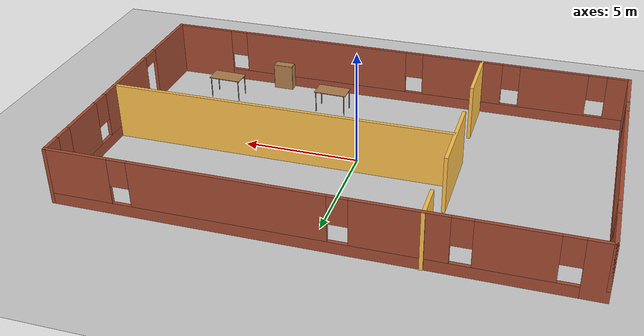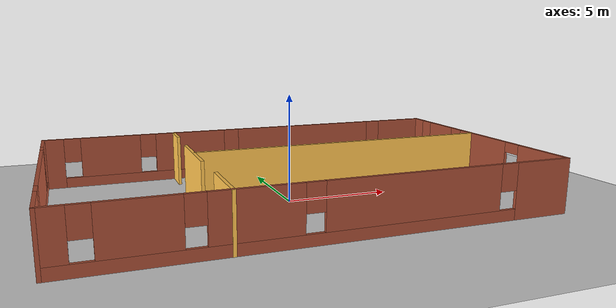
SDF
<sdf version="1.6">
 <world name="default">
  <model name="ground_plane">
   <static>1</static>
   <link name="link">
    <collision name="collision">
     <geometry><plane><normal>0 0 1</normal><size>100 100</size></plane></geometry>
     <surface><friction><ode><mu>100</mu><mu2>50</mu2></ode></friction></surface>
    </collision>
    <visual name="visual">
     <cast_shadows>0</cast_shadows>
     <geometry><plane><normal>0 0 1</normal><size>100 100</size></plane></geometry>
     <material>
      <script><uri>file://media/materials/scripts/gazebo.material</uri><name>Gazebo/Grey</name></script>
     </material>
    </visual>
   </link>
  </model>
  <model name="Building1">
   <pose>-0.03379 0.24138 0 0 -0 0</pose>
   <link name="Wall_0">
    <pose>-0.000989 6.04157 0 0 -0 0</pose>
    <visual name="Wall_0_Visual_0">
     <pose>-10.2395 0 1.25 0 -0 0</pose>
     <geometry><box><size>1.02097 0.15 2.5</size></box></geometry>
     <material>
      <script><uri>file://media/materials/scripts/gazebo.material</uri><name>Gazebo/Bricks</name></script>
      <ambient>1 1 1 1</ambient>
     </material>
     <meta><layer>0</layer></meta>
    </visual>
    <collision name="Wall_0_Collision_0">
     <geometry><box><size>1.02097 0.15 2.5</size></box></geometry>
     <pose>-10.2395 0 1.25 0 -0 0</pose>
    </collision>
    <visual name="Wall_0_Visual_1">
     <pose>0.510485 0 0.25 0 -0 0</pose>
     <geometry><box><size>20.479 0.15 0.5</size></box></geometry>
     <material>
      <script><uri>file://media/materials/scripts/gazebo.material</uri><name>Gazebo/Bricks</name></script>
      <ambient>1 1 1 1</ambient>
     </material>
     <meta><layer>0</layer></meta>
    </visual>
    <collision name="Wall_0_Collision_1">
     <geometry><box><size>20.479 0.15 0.5</size></box></geometry>
     <pose>0.510485 0 0.25 0 -0 0</pose>
    </collision>
    <visual name="Wall_0_Visual_2">
     <pose>-7.44773 0 1.5 0 -0 0</pose>
     <geometry><box><size>2.9626 0.15 2</size></box></geometry>
     <material>
      <script><uri>file://media/materials/scripts/gazebo.material</uri><name>Gazebo/Bricks</name></script>
      <ambient>1 1 1 1</ambient>
     </material>
     <meta><layer>0</layer></meta>
    </visual>
    <collision name="Wall_0_Collision_2">
     <geometry><box><size>2.9626 0.15 2</size></box></geometry>
     <pose>-7.44773 0 1.5 0 -0 0</pose>
    </collision>
    <visual name="Wall_0_Visual_3">
     <pose>-3.31805 0 1.5 0 -0 0</pose>
     <geometry><box><size>3.69676 0.15 2</size></box></geometry>
     <material>
      <script><uri>file://media/materials/scripts/gazebo.material</uri><name>Gazebo/Bricks</name></script>
      <ambient>1 1 1 1</ambient>
     </material>
     <meta><layer>0</layer></meta>
    </visual>
    <collision name="Wall_0_Collision_3">
     <geometry><box><size>3.69676 0.15 2</size></box></geometry>
     <pose>-3.31805 0 1.5 0 -0 0</pose>
    </collision>
    <visual name="Wall_0_Visual_4">
     <pose>3.27414 0 1.5 0 -0 0</pose>
     <geometry><box><size>7.88762 0.15 2</size></box></geometry>
     <material>
      <script><uri>file://media/materials/scripts/gazebo.material</uri><name>Gazebo/Bricks</name></script>
      <ambient>1 1 1 1</ambient>
     </material>
     <meta><layer>0</layer></meta>
    </visual>
    <collision name="Wall_0_Collision_4">
     <geometry><box><size>7.88762 0.15 2</size></box></geometry>
     <pose>3.27414 0 1.5 0 -0 0</pose>
    </collision>
    <visual name="Wall_0_Visual_5">
     <pose>9.38398 0 1.5 0 -0 0</pose>
     <geometry><box><size>2.73204 0.15 2</size></box></geometry>
     <material>
      <script><uri>file://media/materials/scripts/gazebo.material</uri><name>Gazebo/Bricks</name></script>
      <ambient>1 1 1 1</ambient>
     </material>
     <meta><layer>0</layer></meta>
    </visual>
    <collision name="Wall_0_Collision_5">
     <geometry><box><size>2.73204 0.15 2</size></box></geometry>
     <pose>9.38398 0 1.5 0 -0 0</pose>
    </collision>
    <visual name="Wall_0_Visual_6">
     <pose>-9.32903 0 1.9 0 -0 0</pose>
     <geometry><box><size>0.8 0.15 1.2</size></box></geometry>
     <material>
      <script><uri>file://media/materials/scripts/gazebo.material</uri><name>Gazebo/Bricks</name></script>
      <ambient>1 1 1 1</ambient>
     </material>
     <meta><layer>0</layer></meta>
    </visual>
    <collision name="Wall_0_Collision_6">
     <geometry><box><size>0.8 0.15 1.2</size></box></geometry>
     <pose>-9.32903 0 1.9 0 -0 0</pose>
    </collision>
    <visual name="Wall_0_Visual_7">
     <pose>-5.56643 0 1.9 0 -0 0</pose>
     <geometry><box><size>0.8 0.15 1.2</size></box></geometry>
     <material>
      <script><uri>file://media/materials/scripts/gazebo.material</uri><name>Gazebo/Bricks</name></script>
      <ambient>1 1 1 1</ambient>
     </material>
     <meta><layer>0</layer></meta>
    </visual>
    <collision name="Wall_0_Collision_7">
     <geometry><box><size>0.8 0.15 1.2</size></box></geometry>
     <pose>-5.56643 0 1.9 0 -0 0</pose>
    </collision>
    <visual name="Wall_0_Visual_8">
     <pose>-1.06967 0 1.9 0 -0 0</pose>
     <geometry><box><size>0.8 0.15 1.2</size></box></geometry>
     <material>
      <script><uri>file://media/materials/scripts/gazebo.material</uri><name>Gazebo/Bricks</name></script>
      <ambient>1 1 1 1</ambient>
     </material>
     <meta><layer>0</layer></meta>
    </visual>
    <collision name="Wall_0_Collision_8">
     <geometry><box><size>0.8 0.15 1.2</size></box></geometry>
     <pose>-1.06967 0 1.9 0 -0 0</pose>
    </collision>
    <visual name="Wall_0_Visual_9">
     <pose>7.61796 0 1.9 0 -0 0</pose>
     <geometry><box><size>0.8 0.15 1.2</size></box></geometry>
     <material>
      <script><uri>file://media/materials/scripts/gazebo.material</uri><name>Gazebo/Bricks</name></script>
      <ambient>1 1 1 1</ambient>
     </material>
     <meta><layer>0</layer></meta>
    </visual>
    <collision name="Wall_0_Collision_9">
     <geometry><box><size>0.8 0.15 1.2</size></box></geometry>
     <pose>7.61796 0 1.9 0 -0 0</pose>
    </collision>
   </link>
   <link name="Wall_1">
    <pose>10.674 -0.00843 0 0 0 -1.5708</pose>
    <visual name="Wall_1_Visual_0">
     <pose>-5.64511 0 1.25 0 -0 0</pose>
     <geometry><box><size>0.95979 0.15 2.5</size></box></geometry>
     <material>
      <script><uri>file://media/materials/scripts/gazebo.material</uri><name>Gazebo/Bricks</name></script>
      <ambient>1 1 1 1</ambient>
     </material>
     <meta><layer>0</layer></meta>
    </visual>
    <collision name="Wall_1_Collision_0">
     <geometry><box><size>0.95979 0.15 2.5</size></box></geometry>
     <pose>-5.64511 0 1.25 0 -0 0</pose>
    </collision>
    <visual name="Wall_1_Visual_1">
     <pose>4.59102 0 1.25 0 -0 0</pose>
     <geometry><box><size>3.06797 0.15 2.5</size></box></geometry>
     <material>
      <script><uri>file://media/materials/scripts/gazebo.material</uri><name>Gazebo/Bricks</name></script>
      <ambient>1 1 1 1</ambient>
     </material>
     <meta><layer>0</layer></meta>
    </visual>
    <collision name="Wall_1_Collision_1">
     <geometry><box><size>3.06797 0.15 2.5</size></box></geometry>
     <pose>4.59102 0 1.25 0 -0 0</pose>
    </collision>
    <visual name="Wall_1_Visual_2">
     <pose>-1.50409 0 0.25 0 -0 0</pose>
     <geometry><box><size>7.32224 0.15 0.5</size></box></geometry>
     <material>
      <script><uri>file://media/materials/scripts/gazebo.material</uri><name>Gazebo/Bricks</name></script>
      <ambient>1 1 1 1</ambient>
     </material>
     <meta><layer>0</layer></meta>
    </visual>
    <collision name="Wall_1_Collision_2">
     <geometry><box><size>7.32224 0.15 0.5</size></box></geometry>
     <pose>-1.50409 0 0.25 0 -0 0</pose>
    </collision>
    <visual name="Wall_1_Visual_3">
     <pose>-3.32747 0 1.5 0 -0 0</pose>
     <geometry><box><size>2.07548 0.15 2</size></box></geometry>
     <material>
      <script><uri>file://media/materials/scripts/gazebo.material</uri><name>Gazebo/Bricks</name></script>
      <ambient>1 1 1 1</ambient>
     </material>
     <meta><layer>0</layer></meta>
    </visual>
    <collision name="Wall_1_Collision_3">
     <geometry><box><size>2.07548 0.15 2</size></box></geometry>
     <pose>-3.32747 0 1.5 0 -0 0</pose>
    </collision>
    <visual name="Wall_1_Visual_4">
     <pose>0.333653 0 1.5 0 -0 0</pose>
     <geometry><box><size>3.64676 0.15 2</size></box></geometry>
     <material>
      <script><uri>file://media/materials/scripts/gazebo.material</uri><name>Gazebo/Bricks</name></script>
      <ambient>1 1 1 1</ambient>
     </material>
     <meta><layer>0</layer></meta>
    </visual>
    <collision name="Wall_1_Collision_4">
     <geometry><box><size>3.64676 0.15 2</size></box></geometry>
     <pose>0.333653 0 1.5 0 -0 0</pose>
    </collision>
    <visual name="Wall_1_Visual_5">
     <pose>-4.76521 0 1.9 0 -0 0</pose>
     <geometry><box><size>0.8 0.15 1.2</size></box></geometry>
     <material>
      <script><uri>file://media/materials/scripts/gazebo.material</uri><name>Gazebo/Bricks</name></script>
      <ambient>1 1 1 1</ambient>
     </material>
     <meta><layer>0</layer></meta>
    </visual>
    <collision name="Wall_1_Collision_5">
     <geometry><box><size>0.8 0.15 1.2</size></box></geometry>
     <pose>-4.76521 0 1.9 0 -0 0</pose>
    </collision>
    <visual name="Wall_1_Visual_6">
     <pose>-1.88973 0 1.9 0 -0 0</pose>
     <geometry><box><size>0.8 0.15 1.2</size></box></geometry>
     <material>
      <script><uri>file://media/materials/scripts/gazebo.material</uri><name>Gazebo/Bricks</name></script>
      <ambient>1 1 1 1</ambient>
     </material>
     <meta><layer>0</layer></meta>
    </visual>
    <collision name="Wall_1_Collision_6">
     <geometry><box><size>0.8 0.15 1.2</size></box></geometry>
     <pose>-1.88973 0 1.9 0 -0 0</pose>
    </collision>
    <visual name="Wall_1_Visual_7">
     <pose>2.60704 0 2.25 0 -0 0</pose>
     <geometry><box><size>0.9 0.15 0.5</size></box></geometry>
     <material>
      <script><uri>file://media/materials/scripts/gazebo.material</uri><name>Gazebo/Bricks</name></script>
      <ambient>1 1 1 1</ambient>
     </material>
     <meta><layer>0</layer></meta>
    </visual>
    <collision name="Wall_1_Collision_7">
     <geometry><box><size>0.9 0.15 0.5</size></box></geometry>
     <pose>2.60704 0 2.25 0 -0 0</pose>
    </collision>
   </link>
   <link name="Wall_11">
    <collision name="Wall_11_Collision">
     <geometry><box><size>3.75 0.15 2.5</size></box></geometry>
     <pose>0 0 1.25 0 -0 0</pose>
    </collision>
    <visual name="Wall_11_Visual">
     <pose>0 0 1.25 0 -0 0</pose>
     <geometry><box><size>3.75 0.15 2.5</size></box></geometry>
     <material>
      <script><uri>file://media/materials/scripts/gazebo.material</uri><name>Gazebo/Grey</name></script>
      <ambient>1 0.764706 0.305882 1</ambient>
     </material>
     <meta><layer>0</layer></meta>
    </visual>
    <pose>-4.25204 0.570743 0 0 0 -1.5708</pose>
   </link>
   <link name="Wall_13">
    <collision name="Wall_13_Collision">
     <geometry><box><size>2.75 0.15 2.5</size></box></geometry>
     <pose>0 0 1.25 0 -0 0</pose>
    </collision>
    <visual name="Wall_13_Visual">
     <pose>0 0 1.25 0 -0 0</pose>
     <geometry><box><size>2.75 0.15 2.5</size></box></geometry>
     <material>
      <script><uri>file://media/materials/scripts/gazebo.material</uri><name>Gazebo/Grey</name></script>
      <ambient>1 0.764706 0.305882 1</ambient>
     </material>
     <meta><layer>0</layer></meta>
    </visual>
    <pose>-4.19086 -4.77216 0 0 -0 1.5708</pose>
   </link>
   <link name="Wall_15">
    <collision name="Wall_15_Collision">
     <geometry><box><size>1.5 0.15 2.5</size></box></geometry>
     <pose>0 0 1.25 0 -0 0</pose>
    </collision>
    <visual name="Wall_15_Visual">
     <pose>0 0 1.25 0 -0 0</pose>
     <geometry><box><size>1.5 0.15 2.5</size></box></geometry>
     <material>
      <script><uri>file://media/materials/scripts/gazebo.material</uri><name>Gazebo/Grey</name></script>
      <ambient>1 0.764706 0.305882 1</ambient>
     </material>
     <meta><layer>0</layer></meta>
    </visual>
    <pose>-4.19086 5.39716 0 0 0 -1.5708</pose>
   </link>
   <link name="Wall_2">
    <pose>-0.000989 -6.05843 0 0 -0 3.14159</pose>
    <visual name="Wall_2_Visual_0">
     <pose>-9.38398 0 1.25 0 -0 0</pose>
     <geometry><box><size>2.73204 0.15 2.5</size></box></geometry>
     <material>
      <script><uri>file://media/materials/scripts/gazebo.material</uri><name>Gazebo/Bricks</name></script>
      <ambient>1 1 1 1</ambient>
     </material>
     <meta><layer>0</layer></meta>
    </visual>
    <collision name="Wall_2_Collision_0">
     <geometry><box><size>2.73204 0.15 2.5</size></box></geometry>
     <pose>-9.38398 0 1.25 0 -0 0</pose>
    </collision>
    <visual name="Wall_2_Visual_1">
     <pose>1.36602 0 0.25 0 -0 0</pose>
     <geometry><box><size>18.768 0.15 0.5</size></box></geometry>
     <material>
      <script><uri>file://media/materials/scripts/gazebo.material</uri><name>Gazebo/Bricks</name></script>
      <ambient>1 1 1 1</ambient>
     </material>
     <meta><layer>0</layer></meta>
    </visual>
    <collision name="Wall_2_Collision_1">
     <geometry><box><size>18.768 0.15 0.5</size></box></geometry>
     <pose>1.36602 0 0.25 0 -0 0</pose>
    </collision>
    <visual name="Wall_2_Visual_2">
     <pose>-3.27414 0 1.5 0 -0 0</pose>
     <geometry><box><size>7.88762 0.15 2</size></box></geometry>
     <material>
      <script><uri>file://media/materials/scripts/gazebo.material</uri><name>Gazebo/Bricks</name></script>
      <ambient>1 1 1 1</ambient>
     </material>
     <meta><layer>0</layer></meta>
    </visual>
    <collision name="Wall_2_Collision_2">
     <geometry><box><size>7.88762 0.15 2</size></box></geometry>
     <pose>-3.27414 0 1.5 0 -0 0</pose>
    </collision>
    <visual name="Wall_2_Visual_3">
     <pose>3.30275 0 1.5 0 -0 0</pose>
     <geometry><box><size>3.66617 0.15 2</size></box></geometry>
     <material>
      <script><uri>file://media/materials/scripts/gazebo.material</uri><name>Gazebo/Bricks</name></script>
      <ambient>1 1 1 1</ambient>
     </material>
     <meta><layer>0</layer></meta>
    </visual>
    <collision name="Wall_2_Collision_3">
     <geometry><box><size>3.66617 0.15 2</size></box></geometry>
     <pose>3.30275 0 1.5 0 -0 0</pose>
    </collision>
    <visual name="Wall_2_Visual_4">
     <pose>7.43244 0 1.5 0 -0 0</pose>
     <geometry><box><size>2.99319 0.15 2</size></box></geometry>
     <material>
      <script><uri>file://media/materials/scripts/gazebo.material</uri><name>Gazebo/Bricks</name></script>
      <ambient>1 1 1 1</ambient>
     </material>
     <meta><layer>0</layer></meta>
    </visual>
    <collision name="Wall_2_Collision_4">
     <geometry><box><size>2.99319 0.15 2</size></box></geometry>
     <pose>7.43244 0 1.5 0 -0 0</pose>
    </collision>
    <visual name="Wall_2_Visual_5">
     <pose>10.2395 0 1.5 0 -0 0</pose>
     <geometry><box><size>1.02097 0.15 2</size></box></geometry>
     <material>
      <script><uri>file://media/materials/scripts/gazebo.material</uri><name>Gazebo/Bricks</name></script>
      <ambient>1 1 1 1</ambient>
     </material>
     <meta><layer>0</layer></meta>
    </visual>
    <collision name="Wall_2_Collision_5">
     <geometry><box><size>1.02097 0.15 2</size></box></geometry>
     <pose>10.2395 0 1.5 0 -0 0</pose>
    </collision>
    <visual name="Wall_2_Visual_6">
     <pose>-7.61796 0 1.9 0 -0 0</pose>
     <geometry><box><size>0.8 0.15 1.2</size></box></geometry>
     <material>
      <script><uri>file://media/materials/scripts/gazebo.material</uri><name>Gazebo/Bricks</name></script>
      <ambient>1 1 1 1</ambient>
     </material>
     <meta><layer>0</layer></meta>
    </visual>
    <collision name="Wall_2_Collision_6">
     <geometry><box><size>0.8 0.15 1.2</size></box></geometry>
     <pose>-7.61796 0 1.9 0 -0 0</pose>
    </collision>
    <visual name="Wall_2_Visual_7">
     <pose>1.06967 0 1.9 0 -0 0</pose>
     <geometry><box><size>0.8 0.15 1.2</size></box></geometry>
     <material>
      <script><uri>file://media/materials/scripts/gazebo.material</uri><name>Gazebo/Bricks</name></script>
      <ambient>1 1 1 1</ambient>
     </material>
     <meta><layer>0</layer></meta>
    </visual>
    <collision name="Wall_2_Collision_7">
     <geometry><box><size>0.8 0.15 1.2</size></box></geometry>
     <pose>1.06967 0 1.9 0 -0 0</pose>
    </collision>
    <visual name="Wall_2_Visual_8">
     <pose>5.53584 0 1.9 0 -0 0</pose>
     <geometry><box><size>0.8 0.15 1.2</size></box></geometry>
     <material>
      <script><uri>file://media/materials/scripts/gazebo.material</uri><name>Gazebo/Bricks</name></script>
      <ambient>1 1 1 1</ambient>
     </material>
     <meta><layer>0</layer></meta>
    </visual>
    <collision name="Wall_2_Collision_8">
     <geometry><box><size>0.8 0.15 1.2</size></box></geometry>
     <pose>5.53584 0 1.9 0 -0 0</pose>
    </collision>
    <visual name="Wall_2_Visual_9">
     <pose>9.32903 0 1.9 0 -0 0</pose>
     <geometry><box><size>0.8 0.15 1.2</size></box></geometry>
     <material>
      <script><uri>file://media/materials/scripts/gazebo.material</uri><name>Gazebo/Bricks</name></script>
      <ambient>1 1 1 1</ambient>
     </material>
     <meta><layer>0</layer></meta>
    </visual>
    <collision name="Wall_2_Collision_9">
     <geometry><box><size>0.8 0.15 1.2</size></box></geometry>
     <pose>9.32903 0 1.9 0 -0 0</pose>
    </collision>
   </link>
   <link name="Wall_3">
    <pose>-10.676 -0.00843 0 0 -0 1.5708</pose>
    <visual name="Wall_3_Visual_0">
     <pose>-5.07076 0 1.25 0 -0 0</pose>
     <geometry><box><size>2.10849 0.15 2.5</size></box></geometry>
     <material>
      <script><uri>file://media/materials/scripts/gazebo.material</uri><name>Gazebo/Bricks</name></script>
      <ambient>1 1 1 1</ambient>
     </material>
     <meta><layer>0</layer></meta>
    </visual>
    <collision name="Wall_3_Collision_0">
     <geometry><box><size>2.10849 0.15 2.5</size></box></geometry>
     <pose>-5.07076 0 1.25 0 -0 0</pose>
    </collision>
    <visual name="Wall_3_Visual_1">
     <pose>1.05424 0 0.25 0 -0 0</pose>
     <geometry><box><size>10.1415 0.15 0.5</size></box></geometry>
     <material>
      <script><uri>file://media/materials/scripts/gazebo.material</uri><name>Gazebo/Bricks</name></script>
      <ambient>1 1 1 1</ambient>
     </material>
     <meta><layer>0</layer></meta>
    </visual>
    <collision name="Wall_3_Collision_1">
     <geometry><box><size>10.1415 0.15 0.5</size></box></geometry>
     <pose>1.05424 0 0.25 0 -0 0</pose>
    </collision>
    <visual name="Wall_3_Visual_2">
     <pose>0.115496 0 1.5 0 -0 0</pose>
     <geometry><box><size>6.66402 0.15 2</size></box></geometry>
     <material>
      <script><uri>file://media/materials/scripts/gazebo.material</uri><name>Gazebo/Bricks</name></script>
      <ambient>1 1 1 1</ambient>
     </material>
     <meta><layer>0</layer></meta>
    </visual>
    <collision name="Wall_3_Collision_2">
     <geometry><box><size>6.66402 0.15 2</size></box></geometry>
     <pose>0.115496 0 1.5 0 -0 0</pose>
    </collision>
    <visual name="Wall_3_Visual_3">
     <pose>5.18625 0 1.5 0 -0 0</pose>
     <geometry><box><size>1.8775 0.15 2</size></box></geometry>
     <material>
      <script><uri>file://media/materials/scripts/gazebo.material</uri><name>Gazebo/Bricks</name></script>
      <ambient>1 1 1 1</ambient>
     </material>
     <meta><layer>0</layer></meta>
    </visual>
    <collision name="Wall_3_Collision_3">
     <geometry><box><size>1.8775 0.15 2</size></box></geometry>
     <pose>5.18625 0 1.5 0 -0 0</pose>
    </collision>
    <visual name="Wall_3_Visual_4">
     <pose>-3.61651 0 1.9 0 -0 0</pose>
     <geometry><box><size>0.8 0.15 1.2</size></box></geometry>
     <material>
      <script><uri>file://media/materials/scripts/gazebo.material</uri><name>Gazebo/Bricks</name></script>
      <ambient>1 1 1 1</ambient>
     </material>
     <meta><layer>0</layer></meta>
    </visual>
    <collision name="Wall_3_Collision_4">
     <geometry><box><size>0.8 0.15 1.2</size></box></geometry>
     <pose>-3.61651 0 1.9 0 -0 0</pose>
    </collision>
    <visual name="Wall_3_Visual_5">
     <pose>3.8475 0 1.9 0 -0 0</pose>
     <geometry><box><size>0.8 0.15 1.2</size></box></geometry>
     <material>
      <script><uri>file://media/materials/scripts/gazebo.material</uri><name>Gazebo/Bricks</name></script>
      <ambient>1 1 1 1</ambient>
     </material>
     <meta><layer>0</layer></meta>
    </visual>
    <collision name="Wall_3_Collision_5">
     <geometry><box><size>0.8 0.15 1.2</size></box></geometry>
     <pose>3.8475 0 1.9 0 -0 0</pose>
    </collision>
   </link>
   <link name="Wall_9">
    <collision name="Wall_9_Collision">
     <geometry><box><size>15 0.15 2.5</size></box></geometry>
     <pose>0 0 1.25 0 -0 0</pose>
    </collision>
    <visual name="Wall_9_Visual">
     <pose>0 0 1.25 0 -0 0</pose>
     <geometry><box><size>15 0.15 2.5</size></box></geometry>
     <material>
      <script><uri>file://media/materials/scripts/gazebo.material</uri><name>Gazebo/Grey</name></script>
      <ambient>1 0.764706 0.305882 1</ambient>
     </material>
     <meta><layer>0</layer></meta>
    </visual>
    <pose>3.25099 0.565919 0 0 -0 3.14159</pose>
   </link>
   <static>1</static>
  </model>
  <model name="table_clone_clone_clone">
   <static>1</static>
   <link name="link">
    <collision name="surface">
     <pose>0 0 1 0 -0 0</pose>
     <geometry><box><size>1.5 0.8 0.03</size></box></geometry>
     <surface><friction><ode><mu>0.6</mu><mu2>0.6</mu2></ode></friction></surface>
    </collision>
    <visual name="visual1">
     <pose>0 0 1 0 -0 0</pose>
     <geometry><box><size>1.5 0.8 0.03</size></box></geometry>
     <material>
      <script><uri>file://media/materials/scripts/gazebo.material</uri><name>Gazebo/Wood</name></script>
     </material>
    </visual>
    <collision name="front_left_leg">
     <pose>0.68 0.38 0.5 0 -0 0</pose>
     <geometry><cylinder><radius>0.02</radius><length>1</length></cylinder></geometry>
    </collision>
    <visual name="front_left_leg">
     <pose>0.68 0.38 0.5 0 -0 0</pose>
     <geometry><cylinder><radius>0.02</radius><length>1</length></cylinder></geometry>
     <material>
      <script><uri>file://media/materials/scripts/gazebo.material</uri><name>Gazebo/Grey</name></script>
     </material>
    </visual>
    <collision name="front_right_leg">
     <pose>0.68 -0.38 0.5 0 -0 0</pose>
     <geometry><cylinder><radius>0.02</radius><length>1</length></cylinder></geometry>
    </collision>
    <visual name="front_right_leg">
     <pose>0.68 -0.38 0.5 0 -0 0</pose>
     <geometry><cylinder><radius>0.02</radius><length>1</length></cylinder></geometry>
     <material>
      <script><uri>file://media/materials/scripts/gazebo.material</uri><name>Gazebo/Grey</name></script>
     </material>
    </visual>
    <collision name="back_right_leg">
     <pose>-0.68 -0.38 0.5 0 -0 0</pose>
     <geometry><cylinder><radius>0.02</radius><length>1</length></cylinder></geometry>
    </collision>
    <visual name="back_right_leg">
     <pose>-0.68 -0.38 0.5 0 -0 0</pose>
     <geometry><cylinder><radius>0.02</radius><length>1</length></cylinder></geometry>
     <material>
      <script><uri>file://media/materials/scripts/gazebo.material</uri><name>Gazebo/Grey</name></script>
     </material>
    </visual>
    <collision name="back_left_leg">
     <pose>-0.68 0.38 0.5 0 -0 0</pose>
     <geometry><cylinder><radius>0.02</radius><length>1</length></cylinder></geometry>
    </collision>
    <visual name="back_left_leg">
     <pose>-0.68 0.38 0.5 0 -0 0</pose>
     <geometry><cylinder><radius>0.02</radius><length>1</length></cylinder></geometry>
     <material>
      <script><uri>file://media/materials/scripts/gazebo.material</uri><name>Gazebo/Grey</name></script>
     </material>
    </visual>
   </link>
   <pose>2.31941 -3.96963 0 0 -0 3.11071</pose>
  </model>
  <model name="table_clone_clone_clone_clone">
   <static>1</static>
   <link name="link">
    <collision name="surface">
     <pose>0 0 1 0 -0 0</pose>
     <geometry><box><size>1.5 0.8 0.03</size></box></geometry>
     <surface><friction><ode><mu>0.6</mu><mu2>0.6</mu2></ode></friction></surface>
    </collision>
    <visual name="visual1">
     <pose>0 0 1 0 -0 0</pose>
     <geometry><box><size>1.5 0.8 0.03</size></box></geometry>
     <material>
      <script><uri>file://media/materials/scripts/gazebo.material</uri><name>Gazebo/Wood</name></script>
     </material>
    </visual>
    <collision name="front_left_leg">
     <pose>0.68 0.38 0.5 0 -0 0</pose>
     <geometry><cylinder><radius>0.02</radius><length>1</length></cylinder></geometry>
    </collision>
    <visual name="front_left_leg">
     <pose>0.68 0.38 0.5 0 -0 0</pose>
     <geometry><cylinder><radius>0.02</radius><length>1</length></cylinder></geometry>
     <material>
      <script><uri>file://media/materials/scripts/gazebo.material</uri><name>Gazebo/Grey</name></script>
     </material>
    </visual>
    <collision name="front_right_leg">
     <pose>0.68 -0.38 0.5 0 -0 0</pose>
     <geometry><cylinder><radius>0.02</radius><length>1</length></cylinder></geometry>
    </collision>
    <visual name="front_right_leg">
     <pose>0.68 -0.38 0.5 0 -0 0</pose>
     <geometry><cylinder><radius>0.02</radius><length>1</length></cylinder></geometry>
     <material>
      <script><uri>file://media/materials/scripts/gazebo.material</uri><name>Gazebo/Grey</name></script>
     </material>
    </visual>
    <collision name="back_right_leg">
     <pose>-0.68 -0.38 0.5 0 -0 0</pose>
     <geometry><cylinder><radius>0.02</radius><length>1</length></cylinder></geometry>
    </collision>
    <visual name="back_right_leg">
     <pose>-0.68 -0.38 0.5 0 -0 0</pose>
     <geometry><cylinder><radius>0.02</radius><length>1</length></cylinder></geometry>
     <material>
      <script><uri>file://media/materials/scripts/gazebo.material</uri><name>Gazebo/Grey</name></script>
     </material>
    </visual>
    <collision name="back_left_leg">
     <pose>-0.68 0.38 0.5 0 -0 0</pose>
     <geometry><cylinder><radius>0.02</radius><length>1</length></cylinder></geometry>
    </collision>
    <visual name="back_left_leg">
     <pose>-0.68 0.38 0.5 0 -0 0</pose>
     <geometry><cylinder><radius>0.02</radius><length>1</length></cylinder></geometry>
     <material>
      <script><uri>file://media/materials/scripts/gazebo.material</uri><name>Gazebo/Grey</name></script>
     </material>
    </visual>
   </link>
   <pose>7.52746 -3.97309 0 0 -0 3.11071</pose>
  </model>
  <model name="bookshelf_3">
   <static>1</static>
   <link name="link">
    <inertial><mass>1</mass></inertial>
    <collision name="back">
     <pose>0 0.005 0.6 0 -0 0</pose>
     <geometry><box><size>0.9 0.01 1.2</size></box></geometry>
    </collision>
    <visual name="visual1">
     <pose>0 0.005 0.6 0 -0 0</pose>
     <geometry><box><size>0.9 0.01 1.2</size></box></geometry>
     <material>
      <script><uri>file://media/materials/scripts/gazebo.material</uri><name>Gazebo/Wood</name></script>
     </material>
    </visual>
    <collision name="left_side">
     <pose>0.45 -0.195 0.6 0 -0 0</pose>
     <geometry><box><size>0.02 0.4 1.2</size></box></geometry>
    </collision>
    <visual name="visual2">
     <pose>0.45 -0.195 0.6 0 -0 0</pose>
     <geometry><box><size>0.02 0.4 1.2</size></box></geometry>
     <material>
      <script><uri>file://media/materials/scripts/gazebo.material</uri><name>Gazebo/Wood</name></script>
     </material>
    </visual>
    <collision name="right_side">
     <pose>-0.45 -0.195 0.6 0 -0 0</pose>
     <geometry><box><size>0.02 0.4 1.2</size></box></geometry>
    </collision>
    <visual name="visual3">
     <pose>-0.45 -0.195 0.6 0 -0 0</pose>
     <geometry><box><size>0.02 0.4 1.2</size></box></geometry>
     <material>
      <script><uri>file://media/materials/scripts/gazebo.material</uri><name>Gazebo/Wood</name></script>
     </material>
    </visual>
    <collision name="bottom">
     <pose>0 -0.195 0.03 0 -0 0</pose>
     <geometry><box><size>0.88 0.4 0.06</size></box></geometry>
    </collision>
    <visual name="visual4">
     <pose>0 -0.195 0.03 0 -0 0</pose>
     <geometry><box><size>0.88 0.4 0.06</size></box></geometry>
     <material>
      <script><uri>file://media/materials/scripts/gazebo.material</uri><name>Gazebo/Wood</name></script>
     </material>
    </visual>
    <collision name="top">
     <pose>0 -0.195 1.19 0 -0 0</pose>
     <geometry><box><size>0.88 0.4 0.02</size></box></geometry>
    </collision>
    <visual name="visual5">
     <pose>0 -0.195 1.19 0 -0 0</pose>
     <geometry><box><size>0.88 0.4 0.02</size></box></geometry>
     <material>
      <script><uri>file://media/materials/scripts/gazebo.material</uri><name>Gazebo/Wood</name></script>
     </material>
    </visual>
    <collision name="low_shelf">
     <pose>0 -0.195 0.43 0 -0 0</pose>
     <geometry><box><size>0.88 0.4 0.02</size></box></geometry>
    </collision>
    <visual name="visual6">
     <pose>0 -0.195 0.43 0 -0 0</pose>
     <geometry><box><size>0.88 0.4 0.02</size></box></geometry>
     <material>
      <script><uri>file://media/materials/scripts/gazebo.material</uri><name>Gazebo/Wood</name></script>
     </material>
    </visual>
    <collision name="high_shelf">
     <pose>0 -0.195 0.8 0 -0 0</pose>
     <geometry><box><size>0.88 0.4 0.02</size></box></geometry>
    </collision>
    <visual name="visual7">
     <pose>0 -0.195 0.8 0 -0 0</pose>
     <geometry><box><size>0.88 0.4 0.02</size></box></geometry>
     <material>
      <script><uri>file://media/materials/scripts/gazebo.material</uri><name>Gazebo/Wood</name></script>
     </material>
    </visual>
   </link>
   <pose>5.2317 -5.34759 0 0 -0 0</pose>
  </model>
 </world>
</sdf>
